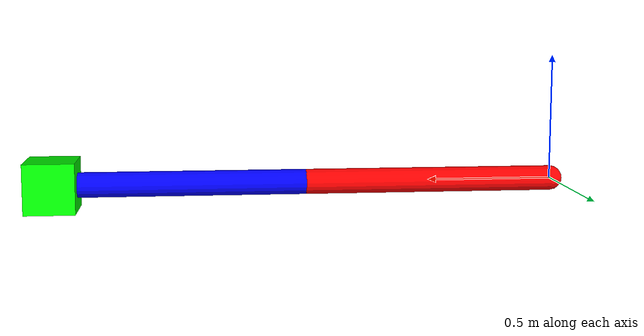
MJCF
<mujoco model="two_link_planar_manipulator">
    <compiler angle="degree" />
    <option timestep="0.002" />
    <default>
        <joint damping="1.0" limited="true" range="-180 180" />
        <geom friction="0.8" contype="1" conaffinity="1" />
    </default>

    <asset>
        <texture type="skybox" builtin="gradient" rgb1="1 1 1" rgb2="0.6 0.8 1" width="256" height="256" />
    </asset>

    <worldbody>
        <light pos="0 1 1" dir="0 -1 -1" diffuse="1 1 1" />

        <body name="base" pos="0 0 0">
            <body name="link1" pos="0 0 0">
                <joint name="joint1" type="hinge" axis="0 0 1" />
                <geom name="link1_geom" type="capsule" fromto="0 0 0 1 0 0" size="0.05" rgba="1 0 0 1" contype="1" conaffinity="1" />
                <body name="link2" pos="1 0 0">
                    <joint name="joint2" type="hinge" axis="0 0 1" pos="0 0 0" />
                    <geom name="link2_geom" type="capsule" fromto="0 0 0 1 0 0" size="0.05" rgba="0 0 1 1" contype="1" conaffinity="1" />
                    <site name="end_effector" pos="1 0 0" size="0.01" type="sphere" rgba="0 0 0 0" />
                </body>
            </body>
        </body>

        <!-- Stationary object placed out of the initial reach of the robot arm -->
        <body name="stationary_object" pos="2 0 0">
            <geom name="stationary_geom" type="box" size="0.1 0.1 0.1" rgba="0 1 0 1" contype="1" conaffinity="1" />
        </body>
    </worldbody>

    <actuator>
        <motor joint="joint1" ctrlrange="-1 1" ctrllimited="true" />
        <motor joint="joint2" ctrlrange="-1 1" ctrllimited="true" />
    </actuator>

    <sensor>
        <force name="force_sensor" site="end_effector" />
    </sensor>
</mujoco>
